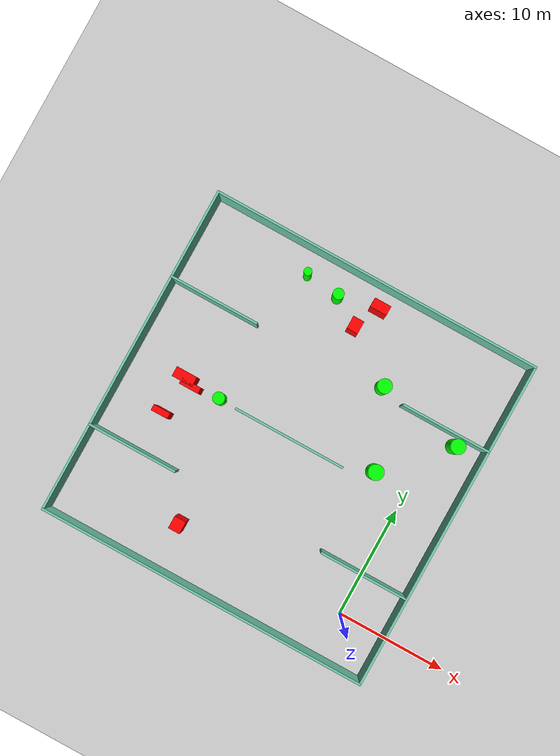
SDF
<sdf version="1.7">
 <world name="default">
  <light name="sun" type="directional">
   <pose>0 0 10 0 -0 0</pose>
   <diffuse>0.8 0.8 0.8 1</diffuse>
   <specular>0.2 0.2 0.2 1</specular>
   <attenuation>
    <range>1000</range>
    <constant>0.9</constant>
    <linear>0.01</linear>
    <quadratic>0.001</quadratic>
   </attenuation>
   <direction>-0.5 0.1 -0.9</direction>
   <spot><inner_angle>0</inner_angle><outer_angle>0</outer_angle><falloff>0</falloff></spot>
  </light>
  <model name="ground_plane">
   <static>1</static>
   <link name="link">
    <collision name="collision">
     <geometry><plane><normal>0 0 1</normal><size>100 100</size></plane></geometry>
     <surface>
      <contact><collide_bitmask>65535</collide_bitmask></contact>
      <friction><ode><mu>100</mu><mu2>50</mu2></ode></friction>
     </surface>
    </collision>
    <visual name="visual">
     <cast_shadows>0</cast_shadows>
     <geometry><plane><normal>0 0 1</normal><size>100 100</size></plane></geometry>
     <material>
      <script><uri>file://media/materials/scripts/gazebo.material</uri><name>Gazebo/Grey</name></script>
     </material>
    </visual>
   </link>
  </model>
  <gravity>0 0 -9.8</gravity>
  <magnetic_field>6e-06 2.3e-05 -4.2e-05</magnetic_field>
  <atmosphere type="adiabatic"/>
  <physics type="ode">
   <max_step_size>0.001</max_step_size>
   <real_time_factor>1</real_time_factor>
   <real_time_update_rate>1000</real_time_update_rate>
  </physics>
  <scene><ambient>0.4 0.4 0.4 1</ambient><background>0.7 0.7 0.7 1</background><shadows>1</shadows></scene>
  <spherical_coordinates>
   <surface_model>EARTH_WGS84</surface_model>
   <latitude_deg>0</latitude_deg>
   <longitude_deg>0</longitude_deg>
   <elevation>0</elevation>
   <heading_deg>0</heading_deg>
  </spherical_coordinates>
  <model name="my_base_walls">
   <link name="Wall_10">
    <collision name="Wall_10_Collision">
     <geometry><box><size>8.2 0.2 2.5</size></box></geometry>
     <pose>0 0 1.25 0 -0 0</pose>
    </collision>
    <visual name="Wall_10_Visual">
     <pose>0 0 1.25 0 -0 0</pose>
     <geometry><box><size>8.2 0.2 2.5</size></box></geometry>
     <material>
      <script><uri>file://media/materials/scripts/gazebo.material</uri><name>Gazebo/Grey</name></script>
      <ambient>0.435294 0.796078 0.67451 1</ambient>
     </material>
     <meta><layer>0</layer></meta>
    </visual>
    <pose>-11 -7 0 0 -0 0</pose>
   </link>
   <link name="Wall_12">
    <collision name="Wall_12_Collision">
     <geometry><box><size>8.2 0.2 2.5</size></box></geometry>
     <pose>0 0 1.25 0 -0 0</pose>
    </collision>
    <visual name="Wall_12_Visual">
     <pose>0 0 1.25 0 -0 0</pose>
     <geometry><box><size>8.2 0.2 2.5</size></box></geometry>
     <material>
      <script><uri>file://media/materials/scripts/gazebo.material</uri><name>Gazebo/Grey</name></script>
      <ambient>0.435294 0.796078 0.67451 1</ambient>
     </material>
     <meta><layer>0</layer></meta>
    </visual>
    <pose>-11 7 0 0 -0 0</pose>
   </link>
   <link name="Wall_14">
    <collision name="Wall_14_Collision">
     <geometry><box><size>8.2 0.2 2.5</size></box></geometry>
     <pose>0 0 1.25 0 -0 0</pose>
    </collision>
    <visual name="Wall_14_Visual">
     <pose>0 0 1.25 0 -0 0</pose>
     <geometry><box><size>8.2 0.2 2.5</size></box></geometry>
     <material>
      <script><uri>file://media/materials/scripts/gazebo.material</uri><name>Gazebo/Grey</name></script>
      <ambient>0.435294 0.796078 0.67451 1</ambient>
     </material>
     <meta><layer>0</layer></meta>
    </visual>
    <pose>11 7 0 0 -0 3.14159</pose>
   </link>
   <link name="Wall_16">
    <collision name="Wall_16_Collision">
     <geometry><box><size>10.2 0.2 2.5</size></box></geometry>
     <pose>0 0 1.25 0 -0 0</pose>
    </collision>
    <visual name="Wall_16_Visual">
     <pose>0 0 1.25 0 -0 0</pose>
     <geometry><box><size>10.2 0.2 2.5</size></box></geometry>
     <material>
      <script><uri>file://media/materials/scripts/gazebo.material</uri><name>Gazebo/Grey</name></script>
      <ambient>0.435294 0.796078 0.67451 1</ambient>
     </material>
     <meta><layer>0</layer></meta>
    </visual>
    <pose>0 0 0 0 -0 3.14159</pose>
   </link>
   <link name="Wall_2">
    <collision name="Wall_2_Collision">
     <geometry><box><size>30.2 0.2 2.5</size></box></geometry>
     <pose>0 0 1.25 0 -0 0</pose>
    </collision>
    <visual name="Wall_2_Visual">
     <pose>0 0 1.25 0 -0 0</pose>
     <geometry><box><size>30.2 0.2 2.5</size></box></geometry>
     <material>
      <script><uri>file://media/materials/scripts/gazebo.material</uri><name>Gazebo/Grey</name></script>
      <ambient>0.435294 0.796078 0.67451 1</ambient>
     </material>
     <meta><layer>0</layer></meta>
    </visual>
    <pose>0 -15 0 0 -0 3.14159</pose>
   </link>
   <link name="Wall_3">
    <collision name="Wall_3_Collision">
     <geometry><box><size>30.2 0.2 2.5</size></box></geometry>
     <pose>0 0 1.25 0 -0 0</pose>
    </collision>
    <visual name="Wall_3_Visual">
     <pose>0 0 1.25 0 -0 0</pose>
     <geometry><box><size>30.2 0.2 2.5</size></box></geometry>
     <material>
      <script><uri>file://media/materials/scripts/gazebo.material</uri><name>Gazebo/Grey</name></script>
      <ambient>0.435294 0.796078 0.67451 1</ambient>
     </material>
     <meta><layer>0</layer></meta>
    </visual>
    <pose>-15 0 0 0 -0 1.5708</pose>
   </link>
   <link name="Wall_4">
    <collision name="Wall_4_Collision">
     <geometry><box><size>30.2 0.2 2.5</size></box></geometry>
     <pose>0 0 1.25 0 -0 0</pose>
    </collision>
    <visual name="Wall_4_Visual">
     <pose>0 0 1.25 0 -0 0</pose>
     <geometry><box><size>30.2 0.2 2.5</size></box></geometry>
     <material>
      <script><uri>file://media/materials/scripts/gazebo.material</uri><name>Gazebo/Grey</name></script>
      <ambient>0.435294 0.796078 0.67451 1</ambient>
     </material>
     <meta><layer>0</layer></meta>
    </visual>
    <pose>0 15 0 0 -0 0</pose>
   </link>
   <link name="Wall_6">
    <collision name="Wall_6_Collision">
     <geometry><box><size>30.2 0.2 2.5</size></box></geometry>
     <pose>0 0 1.25 0 -0 0</pose>
    </collision>
    <visual name="Wall_6_Visual">
     <pose>0 0 1.25 0 -0 0</pose>
     <geometry><box><size>30.2 0.2 2.5</size></box></geometry>
     <material>
      <script><uri>file://media/materials/scripts/gazebo.material</uri><name>Gazebo/Grey</name></script>
      <ambient>0.435294 0.796078 0.67451 1</ambient>
     </material>
     <meta><layer>0</layer></meta>
    </visual>
    <pose>15 0 0 0 -0 1.5708</pose>
   </link>
   <link name="Wall_8">
    <collision name="Wall_8_Collision">
     <geometry><box><size>8.2 0.2 2.5</size></box></geometry>
     <pose>0 0 1.25 0 -0 0</pose>
    </collision>
    <visual name="Wall_8_Visual">
     <pose>0 0 1.25 0 -0 0</pose>
     <geometry><box><size>8.2 0.2 2.5</size></box></geometry>
     <material>
      <script><uri>file://media/materials/scripts/gazebo.material</uri><name>Gazebo/Grey</name></script>
      <ambient>0.435294 0.796078 0.67451 1</ambient>
     </material>
     <meta><layer>0</layer></meta>
    </visual>
    <pose>11 -7 0 0 -0 3.14159</pose>
   </link>
   <static>1</static>
   <pose>-11 11 0 0 -0 0</pose>
  </model>
  <model name="cylinder1">
   <static>1</static>
   <link name="link">
    <inertial>
     <mass>1</mass>
     <inertia><ixx>0.5</ixx><ixy>0</ixy><ixz>0</ixz><iyy>0.5</iyy><iyz>0</iyz><izz>1</izz></inertia>
    </inertial>
    <collision name="collision">
     <geometry><cylinder><radius>0.356801186133056</radius><length>2.5</length></cylinder></geometry>
    </collision>
    <visual name="visual">
     <geometry><cylinder><radius>0.356801186133056</radius><length>2.5</length></cylinder></geometry>
     <material>
      <ambient>0 1 0 1</ambient>
      <diffuse>0 1 0 1</diffuse>
      <specular>0.1 0.1 0.1 1</specular>
      <emissive>0 0 0 0</emissive>
     </material>
    </visual>
   </link>
   <pose>-16.332341911443173 23.808517534363116 1.25 0 0 0</pose>
  </model>
  <model name="cylinder2">
   <static>1</static>
   <link name="link">
    <inertial>
     <mass>1</mass>
     <inertia><ixx>0.5</ixx><ixy>0</ixy><ixz>0</ixz><iyy>0.5</iyy><iyz>0</iyz><izz>1</izz></inertia>
    </inertial>
    <collision name="collision">
     <geometry><cylinder><radius>0.49220284713724377</radius><length>2.5</length></cylinder></geometry>
    </collision>
    <visual name="visual">
     <geometry><cylinder><radius>0.49220284713724377</radius><length>2.5</length></cylinder></geometry>
     <material>
      <ambient>0 1 0 1</ambient>
      <diffuse>0 1 0 1</diffuse>
      <specular>0.1 0.1 0.1 1</specular>
      <emissive>0 0 0 0</emissive>
     </material>
    </visual>
   </link>
   <pose>-13.215196656120547 23.41891817524983 1.25 0 0 0</pose>
  </model>
  <model name="cylinder3">
   <static>1</static>
   <link name="link">
    <inertial>
     <mass>1</mass>
     <inertia><ixx>0.5</ixx><ixy>0</ixy><ixz>0</ixz><iyy>0.5</iyy><iyz>0</iyz><izz>1</izz></inertia>
    </inertial>
    <collision name="collision">
     <geometry><cylinder><radius>0.6459807730963163</radius><length>2.5</length></cylinder></geometry>
    </collision>
    <visual name="visual">
     <geometry><cylinder><radius>0.6459807730963163</radius><length>2.5</length></cylinder></geometry>
     <material>
      <ambient>0 1 0 1</ambient>
      <diffuse>0 1 0 1</diffuse>
      <specular>0.1 0.1 0.1 1</specular>
      <emissive>0 0 0 0</emissive>
     </material>
    </visual>
   </link>
   <pose>-6.165984534200701 18.596560380549434 1.25 0 0 0</pose>
  </model>
  <model name="cylinder4">
   <static>1</static>
   <link name="link">
    <inertial>
     <mass>1</mass>
     <inertia><ixx>0.5</ixx><ixy>0</ixy><ixz>0</ixz><iyy>0.5</iyy><iyz>0</iyz><izz>1</izz></inertia>
    </inertial>
    <collision name="collision">
     <geometry><cylinder><radius>0.5331078048559887</radius><length>2.5</length></cylinder></geometry>
    </collision>
    <visual name="visual">
     <geometry><cylinder><radius>0.5331078048559887</radius><length>2.5</length></cylinder></geometry>
     <material>
      <ambient>0 1 0 1</ambient>
      <diffuse>0 1 0 1</diffuse>
      <specular>0.1 0.1 0.1 1</specular>
      <emissive>0 0 0 0</emissive>
     </material>
    </visual>
   </link>
   <pose>-17.702023130020248 11.071037884132874 1.25 0 0 0</pose>
  </model>
  <model name="cylinder5">
   <static>1</static>
   <link name="link">
    <inertial>
     <mass>1</mass>
     <inertia><ixx>0.5</ixx><ixy>0</ixy><ixz>0</ixz><iyy>0.5</iyy><iyz>0</iyz><izz>1</izz></inertia>
    </inertial>
    <collision name="collision">
     <geometry><cylinder><radius>0.6625377563241015</radius><length>2.5</length></cylinder></geometry>
    </collision>
    <visual name="visual">
     <geometry><cylinder><radius>0.6625377563241015</radius><length>2.5</length></cylinder></geometry>
     <material>
      <ambient>0 1 0 1</ambient>
      <diffuse>0 1 0 1</diffuse>
      <specular>0.1 0.1 0.1 1</specular>
      <emissive>0 0 0 0</emissive>
     </material>
    </visual>
   </link>
   <pose>1.5780064443143722 17.1489951706839 1.25 0 0 0</pose>
  </model>
  <model name="cylinder6">
   <static>1</static>
   <link name="link">
    <inertial>
     <mass>1</mass>
     <inertia><ixx>0.5</ixx><ixy>0</ixy><ixz>0</ixz><iyy>0.5</iyy><iyz>0</iyz><izz>1</izz></inertia>
    </inertial>
    <collision name="collision">
     <geometry><cylinder><radius>0.6911702821733345</radius><length>2.5</length></cylinder></geometry>
    </collision>
    <visual name="visual">
     <geometry><cylinder><radius>0.6911702821733345</radius><length>2.5</length></cylinder></geometry>
     <material>
      <ambient>0 1 0 1</ambient>
      <diffuse>0 1 0 1</diffuse>
      <specular>0.1 0.1 0.1 1</specular>
      <emissive>0 0 0 0</emissive>
     </material>
    </visual>
   </link>
   <pose>-3.342880334289223 11.996684153861633 1.25 0 0 0</pose>
  </model>
  <model name="box1">
   <static>1</static>
   <link name="link">
    <inertial>
     <mass>1</mass>
     <inertia><ixx>0.083</ixx><ixy>0</ixy><ixz>0</ixz><iyy>0.083</iyy><iyz>0</iyz><izz>0.083</izz></inertia>
    </inertial>
    <collision name="collision">
     <geometry><box><size>1.0617659522032343 1.1352573428258985 2.5</size></box></geometry>
    </collision>
    <visual name="visual">
     <geometry><box><size>1.0617659522032343 1.1352573428258985 2.5</size></box></geometry>
     <material>
      <ambient>1 0 0 1</ambient>
      <diffuse>1 0 0 1</diffuse>
      <specular>0.1 0.1 0.1 1</specular>
      <emissive>0 0 0 0</emissive>
     </material>
    </visual>
    <sensor name="my_contact" type="contact">
     <contact><collision>box_collision</collision><topic>__default_topic__</topic></contact>
    </sensor>
   </link>
   <pose>-15.627643293778567 0.23113746516726863 1.25 0 0 0</pose>
  </model>
  <model name="box2">
   <static>1</static>
   <link name="link">
    <inertial>
     <mass>1</mass>
     <inertia><ixx>0.083</ixx><ixy>0</ixy><ixz>0</ixz><iyy>0.083</iyy><iyz>0</iyz><izz>0.083</izz></inertia>
    </inertial>
    <collision name="collision">
     <geometry><box><size>1.8887342639245404 0.8947153557084224 2.5</size></box></geometry>
    </collision>
    <visual name="visual">
     <geometry><box><size>1.8887342639245404 0.8947153557084224 2.5</size></box></geometry>
     <material>
      <ambient>1 0 0 1</ambient>
      <diffuse>1 0 0 1</diffuse>
      <specular>0.1 0.1 0.1 1</specular>
      <emissive>0 0 0 0</emissive>
     </material>
    </visual>
    <sensor name="my_contact" type="contact">
     <contact><collision>box_collision</collision><topic>__default_topic__</topic></contact>
    </sensor>
   </link>
   <pose>-21.0399421317956 11.263847120641092 1.25 0 0 0</pose>
  </model>
  <model name="box3">
   <static>1</static>
   <link name="link">
    <inertial>
     <mass>1</mass>
     <inertia><ixx>0.083</ixx><ixy>0</ixy><ixz>0</ixz><iyy>0.083</iyy><iyz>0</iyz><izz>0.083</izz></inertia>
    </inertial>
    <collision name="collision">
     <geometry><box><size>1.5316696438942456 0.8369266892108662 2.5</size></box></geometry>
    </collision>
    <visual name="visual">
     <geometry><box><size>1.5316696438942456 0.8369266892108662 2.5</size></box></geometry>
     <material>
      <ambient>1 0 0 1</ambient>
      <diffuse>1 0 0 1</diffuse>
      <specular>0.1 0.1 0.1 1</specular>
      <emissive>0 0 0 0</emissive>
     </material>
    </visual>
    <sensor name="my_contact" type="contact">
     <contact><collision>box_collision</collision><topic>__default_topic__</topic></contact>
    </sensor>
   </link>
   <pose>-9.649551620803816 24.189546976818576 1.25 0 0 0</pose>
  </model>
  <model name="box4">
   <static>1</static>
   <link name="link">
    <inertial>
     <mass>1</mass>
     <inertia><ixx>0.083</ixx><ixy>0</ixy><ixz>0</ixz><iyy>0.083</iyy><iyz>0</iyz><izz>0.083</izz></inertia>
    </inertial>
    <collision name="collision">
     <geometry><box><size>1.5269716926385848 0.538865048235431 2.5</size></box></geometry>
    </collision>
    <visual name="visual">
     <geometry><box><size>1.5269716926385848 0.538865048235431 2.5</size></box></geometry>
     <material>
      <ambient>1 0 0 1</ambient>
      <diffuse>1 0 0 1</diffuse>
      <specular>0.1 0.1 0.1 1</specular>
      <emissive>0 0 0 0</emissive>
     </material>
    </visual>
    <sensor name="my_contact" type="contact">
     <contact><collision>box_collision</collision><topic>__default_topic__</topic></contact>
    </sensor>
   </link>
   <pose>-21.371046669634183 7.771074631374445 1.25 0 0 0</pose>
  </model>
  <model name="box5">
   <static>1</static>
   <link name="link">
    <inertial>
     <mass>1</mass>
     <inertia><ixx>0.083</ixx><ixy>0</ixy><ixz>0</ixz><iyy>0.083</iyy><iyz>0</iyz><izz>0.083</izz></inertia>
    </inertial>
    <collision name="collision">
     <geometry><box><size>1.7766353495554688 0.5524890691997474 2.5</size></box></geometry>
    </collision>
    <visual name="visual">
     <geometry><box><size>1.7766353495554688 0.5524890691997474 2.5</size></box></geometry>
     <material>
      <ambient>1 0 0 1</ambient>
      <diffuse>1 0 0 1</diffuse>
      <specular>0.1 0.1 0.1 1</specular>
      <emissive>0 0 0 0</emissive>
     </material>
    </visual>
    <sensor name="my_contact" type="contact">
     <contact><collision>box_collision</collision><topic>__default_topic__</topic></contact>
    </sensor>
   </link>
   <pose>-20.268230525504524 10.8275604462276 1.25 0 0 0</pose>
  </model>
  <model name="box6">
   <static>1</static>
   <link name="link">
    <inertial>
     <mass>1</mass>
     <inertia><ixx>0.083</ixx><ixy>0</ixy><ixz>0</ixz><iyy>0.083</iyy><iyz>0</iyz><izz>0.083</izz></inertia>
    </inertial>
    <collision name="collision">
     <geometry><box><size>1.0247502097483179 1.1404656056316274 2.5</size></box></geometry>
    </collision>
    <visual name="visual">
     <geometry><box><size>1.0247502097483179 1.1404656056316274 2.5</size></box></geometry>
     <material>
      <ambient>1 0 0 1</ambient>
      <diffuse>1 0 0 1</diffuse>
      <specular>0.1 0.1 0.1 1</specular>
      <emissive>0 0 0 0</emissive>
     </material>
    </visual>
    <sensor name="my_contact" type="contact">
     <contact><collision>box_collision</collision><topic>__default_topic__</topic></contact>
    </sensor>
   </link>
   <pose>-10.740663466462841 21.852664831696842 1.25 0 0 0</pose>
  </model>
 </world>
</sdf>
